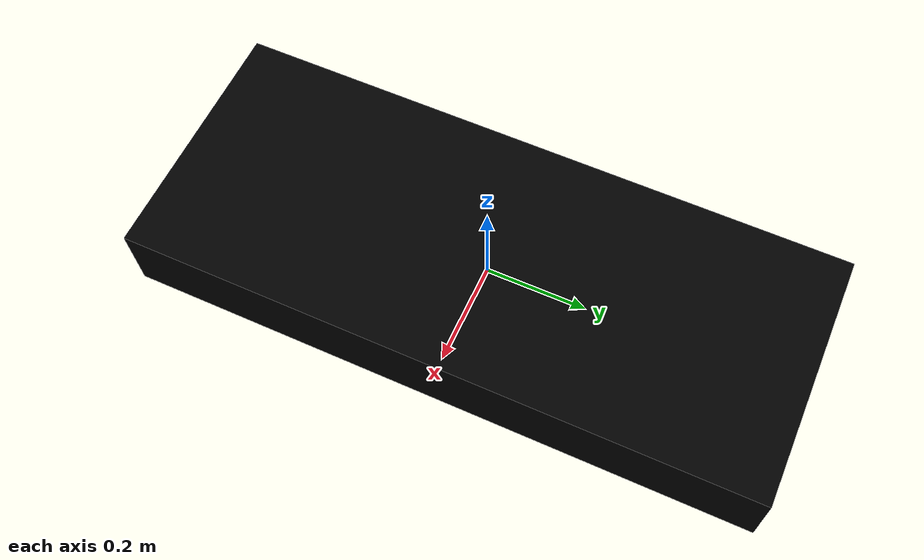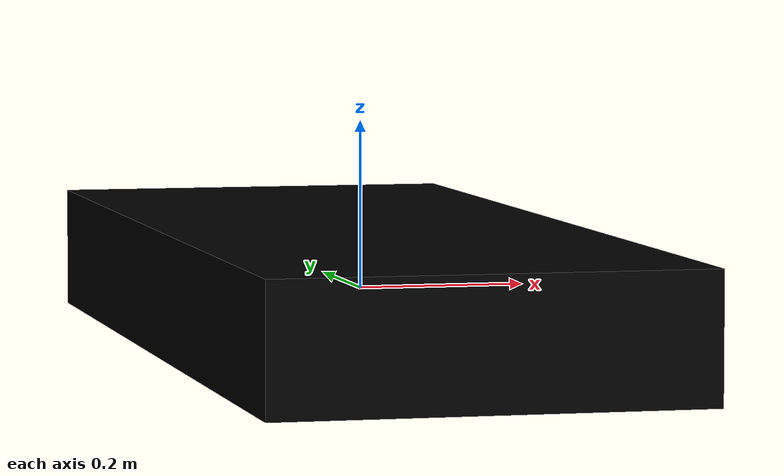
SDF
<?xml version="1.0"?>
<sdf version="1.7">
  <model name="platform">
    <pose>0 0 0 0 0 0</pose>
    <link name="platform_link">
      <inertial>
        <mass>1.0</mass>
        <inertia>
          <ixx>0.005833</ixx>
          <ixy>0.0</ixy>
          <ixz>0.0</ixz>
          <iyy>0.005833</iyy>
          <iyz>0.0</iyz>
          <izz>0.005</izz>
        </inertia>
      </inertial>
      <collision name="collision">
        <geometry>
          <box>
            <size>0.5 1.25 0.15</size>
          </box>
        </geometry>
      </collision>
      <visual name="visual">
        <geometry>
          <box>
            <size>0.5 1.25 0.15</size>
          </box>
        </geometry>
        <material>
          <diffuse>0.0 0.0 0.0 1.0</diffuse>
        </material>
      </visual>
    </link>
  </model>
</sdf>
